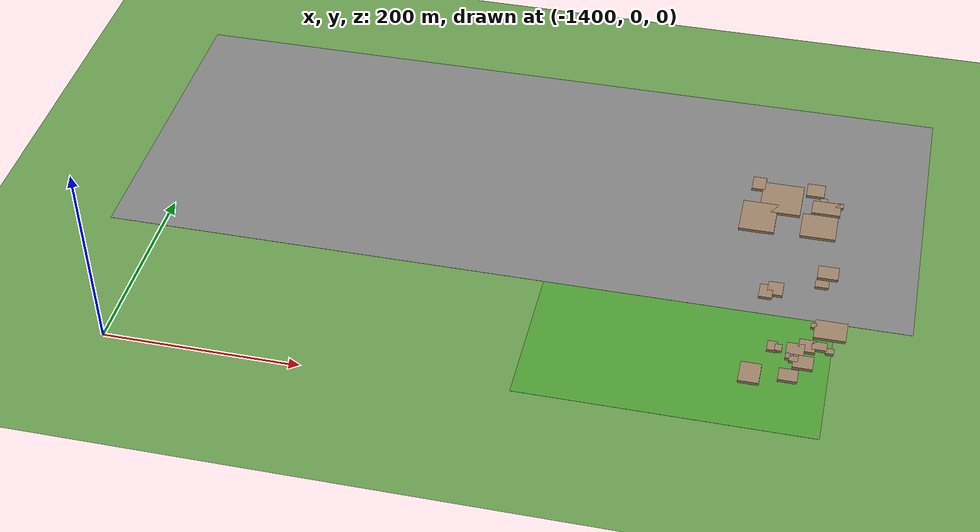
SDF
<sdf version="1.9">
 <world name="kimje_farmland">
  <model name="ground_plane">
   <static>true</static>
   <link name="link">
    <collision name="collision">
     <geometry><plane><normal>0 0 1</normal><size>2000 2000</size></plane></geometry>
    </collision>
    <visual name="visual">
     <geometry><plane><normal>0 0 1</normal><size>2000 2000</size></plane></geometry>
     <material><ambient>0.4 0.6 0.3 1</ambient><diffuse>0.4 0.6 0.3 1</diffuse></material>
    </visual>
   </link>
  </model>
  <model name="osm_77">
   <static>true</static>
   <pose>-1043.21 331.19 0.040 0 0 0</pose>
   <link name="link">
    <collision name="collision"><geometry><box><size>829.08 332.94 0.080</size></box></geometry></collision>
    <visual name="visual">
     <geometry><box><size>829.08 332.94 0.080</size></box></geometry>
     <material><ambient>0.5 0.5 0.5 1</ambient><diffuse>0.5 0.5 0.5 1</diffuse></material>
    </visual>
   </link>
  </model>
  <model name="osm_267">
   <static>true</static>
   <pose>-743.27 359.89 1.500 0 0 0</pose>
   <link name="link">
    <collision name="collision"><geometry><box><size>18.78 19.33 3.000</size></box></geometry></collision>
    <visual name="visual">
     <geometry><box><size>18.78 19.33 3.000</size></box></geometry>
     <material><ambient>0.6 0.5 0.4 1</ambient><diffuse>0.6 0.5 0.4 1</diffuse></material>
    </visual>
   </link>
  </model>
  <model name="osm_268">
   <static>true</static>
   <pose>-733.55 345.31 1.500 0 0 0</pose>
   <link name="link">
    <collision name="collision"><geometry><box><size>7.40 6.65 3.000</size></box></geometry></collision>
    <visual name="visual">
     <geometry><box><size>7.40 6.65 3.000</size></box></geometry>
     <material><ambient>0.6 0.5 0.4 1</ambient><diffuse>0.6 0.5 0.4 1</diffuse></material>
    </visual>
   </link>
  </model>
  <model name="osm_269">
   <static>true</static>
   <pose>-716.46 340.56 1.500 0 0 0</pose>
   <link name="link">
    <collision name="collision"><geometry><box><size>7.94 6.80 3.000</size></box></geometry></collision>
    <visual name="visual">
     <geometry><box><size>7.94 6.80 3.000</size></box></geometry>
     <material><ambient>0.6 0.5 0.4 1</ambient><diffuse>0.6 0.5 0.4 1</diffuse></material>
    </visual>
   </link>
  </model>
  <model name="osm_270">
   <static>true</static>
   <pose>-729.62 333.58 1.500 0 0 0</pose>
   <link name="link">
    <collision name="collision"><geometry><box><size>29.69 19.46 3.000</size></box></geometry></collision>
    <visual name="visual">
     <geometry><box><size>29.69 19.46 3.000</size></box></geometry>
     <material><ambient>0.6 0.5 0.4 1</ambient><diffuse>0.6 0.5 0.4 1</diffuse></material>
    </visual>
   </link>
  </model>
  <model name="osm_271">
   <static>true</static>
   <pose>-734.37 302.98 1.500 0 0 0</pose>
   <link name="link">
    <collision name="collision"><geometry><box><size>36.65 35.29 3.000</size></box></geometry></collision>
    <visual name="visual">
     <geometry><box><size>36.65 35.29 3.000</size></box></geometry>
     <material><ambient>0.6 0.5 0.4 1</ambient><diffuse>0.6 0.5 0.4 1</diffuse></material>
    </visual>
   </link>
  </model>
  <model name="osm_272">
   <static>true</static>
   <pose>-777.07 339.11 1.500 0 0 0</pose>
   <link name="link">
    <collision name="collision"><geometry><box><size>42.67 46.49 3.000</size></box></geometry></collision>
    <visual name="visual">
     <geometry><box><size>42.67 46.49 3.000</size></box></geometry>
     <material><ambient>0.6 0.5 0.4 1</ambient><diffuse>0.6 0.5 0.4 1</diffuse></material>
    </visual>
   </link>
  </model>
  <model name="osm_273">
   <static>true</static>
   <pose>-797.60 306.10 1.500 0 0 0</pose>
   <link name="link">
    <collision name="collision"><geometry><box><size>36.50 44.73 3.000</size></box></geometry></collision>
    <visual name="visual">
     <geometry><box><size>36.50 44.73 3.000</size></box></geometry>
     <material><ambient>0.6 0.5 0.4 1</ambient><diffuse>0.6 0.5 0.4 1</diffuse></material>
    </visual>
   </link>
  </model>
  <model name="osm_274">
   <static>true</static>
   <pose>-803.30 359.51 1.500 0 0 0</pose>
   <link name="link">
    <collision name="collision"><geometry><box><size>13.94 19.22 3.000</size></box></geometry></collision>
    <visual name="visual">
     <geometry><box><size>13.94 19.22 3.000</size></box></geometry>
     <material><ambient>0.6 0.5 0.4 1</ambient><diffuse>0.6 0.5 0.4 1</diffuse></material>
    </visual>
   </link>
  </model>
  <model name="osm_412">
   <static>true</static>
   <pose>-767.48 200.61 1.500 0 0 0</pose>
   <link name="link">
    <collision name="collision"><geometry><box><size>15.38 18.66 3.000</size></box></geometry></collision>
    <visual name="visual">
     <geometry><box><size>15.38 18.66 3.000</size></box></geometry>
     <material><ambient>0.6 0.5 0.4 1</ambient><diffuse>0.6 0.5 0.4 1</diffuse></material>
    </visual>
   </link>
  </model>
  <model name="osm_413">
   <static>true</static>
   <pose>-776.26 195.11 1.500 0 0 0</pose>
   <link name="link">
    <collision name="collision"><geometry><box><size>13.58 18.57 3.000</size></box></geometry></collision>
    <visual name="visual">
     <geometry><box><size>13.58 18.57 3.000</size></box></geometry>
     <material><ambient>0.6 0.5 0.4 1</ambient><diffuse>0.6 0.5 0.4 1</diffuse></material>
    </visual>
   </link>
  </model>
  <model name="osm_414">
   <static>true</static>
   <pose>-718.07 234.54 1.500 0 0 0</pose>
   <link name="link">
    <collision name="collision"><geometry><box><size>20.97 18.01 3.000</size></box></geometry></collision>
    <visual name="visual">
     <geometry><box><size>20.97 18.01 3.000</size></box></geometry>
     <material><ambient>0.6 0.5 0.4 1</ambient><diffuse>0.6 0.5 0.4 1</diffuse></material>
    </visual>
   </link>
  </model>
  <model name="osm_415">
   <static>true</static>
   <pose>-722.65 216.96 1.500 0 0 0</pose>
   <link name="link">
    <collision name="collision"><geometry><box><size>13.51 10.46 3.000</size></box></geometry></collision>
    <visual name="visual">
     <geometry><box><size>13.51 10.46 3.000</size></box></geometry>
     <material><ambient>0.6 0.5 0.4 1</ambient><diffuse>0.6 0.5 0.4 1</diffuse></material>
    </visual>
   </link>
  </model>
  <model name="osm_418">
   <static>true</static>
   <pose>-707.88 152.14 1.500 0 0 0</pose>
   <link name="link">
    <collision name="collision"><geometry><box><size>31.64 25.01 3.000</size></box></geometry></collision>
    <visual name="visual">
     <geometry><box><size>31.64 25.01 3.000</size></box></geometry>
     <material><ambient>0.6 0.5 0.4 1</ambient><diffuse>0.6 0.5 0.4 1</diffuse></material>
    </visual>
   </link>
  </model>
  <model name="osm_420">
   <static>true</static>
   <pose>-724.60 156.01 1.500 0 0 0</pose>
   <link name="link">
    <collision name="collision"><geometry><box><size>5.79 6.29 3.000</size></box></geometry></collision>
    <visual name="visual">
     <geometry><box><size>5.79 6.29 3.000</size></box></geometry>
     <material><ambient>0.6 0.5 0.4 1</ambient><diffuse>0.6 0.5 0.4 1</diffuse></material>
    </visual>
   </link>
  </model>
  <model name="osm_453">
   <static>true</static>
   <pose>-728.06 126.51 1.500 0 0 0</pose>
   <link name="link">
    <collision name="collision"><geometry><box><size>16.15 16.69 3.000</size></box></geometry></collision>
    <visual name="visual">
     <geometry><box><size>16.15 16.69 3.000</size></box></geometry>
     <material><ambient>0.6 0.5 0.4 1</ambient><diffuse>0.6 0.5 0.4 1</diffuse></material>
    </visual>
   </link>
  </model>
  <model name="osm_454">
   <static>true</static>
   <pose>-716.39 128.60 1.500 0 0 0</pose>
   <link name="link">
    <collision name="collision"><geometry><box><size>14.66 10.84 3.000</size></box></geometry></collision>
    <visual name="visual">
     <geometry><box><size>14.66 10.84 3.000</size></box></geometry>
     <material><ambient>0.6 0.5 0.4 1</ambient><diffuse>0.6 0.5 0.4 1</diffuse></material>
    </visual>
   </link>
  </model>
  <model name="osm_455">
   <static>true</static>
   <pose>-706.07 123.72 1.500 0 0 0</pose>
   <link name="link">
    <collision name="collision"><geometry><box><size>8.12 7.14 3.000</size></box></geometry></collision>
    <visual name="visual">
     <geometry><box><size>8.12 7.14 3.000</size></box></geometry>
     <material><ambient>0.6 0.5 0.4 1</ambient><diffuse>0.6 0.5 0.4 1</diffuse></material>
    </visual>
   </link>
  </model>
  <model name="osm_456">
   <static>true</static>
   <pose>-738.75 119.87 1.500 0 0 0</pose>
   <link name="link">
    <collision name="collision"><geometry><box><size>17.43 15.08 3.000</size></box></geometry></collision>
    <visual name="visual">
     <geometry><box><size>17.43 15.08 3.000</size></box></geometry>
     <material><ambient>0.6 0.5 0.4 1</ambient><diffuse>0.6 0.5 0.4 1</diffuse></material>
    </visual>
   </link>
  </model>
  <model name="osm_457">
   <static>true</static>
   <pose>-729.57 103.71 1.500 0 0 0</pose>
   <link name="link">
    <collision name="collision"><geometry><box><size>19.73 17.19 3.000</size></box></geometry></collision>
    <visual name="visual">
     <geometry><box><size>19.73 17.19 3.000</size></box></geometry>
     <material><ambient>0.6 0.5 0.4 1</ambient><diffuse>0.6 0.5 0.4 1</diffuse></material>
    </visual>
   </link>
  </model>
  <model name="osm_458">
   <static>true</static>
   <pose>-743.65 109.70 1.500 0 0 0</pose>
   <link name="link">
    <collision name="collision"><geometry><box><size>7.17 7.61 3.000</size></box></geometry></collision>
    <visual name="visual">
     <geometry><box><size>7.17 7.61 3.000</size></box></geometry>
     <material><ambient>0.6 0.5 0.4 1</ambient><diffuse>0.6 0.5 0.4 1</diffuse></material>
    </visual>
   </link>
  </model>
  <model name="osm_459">
   <static>true</static>
   <pose>-739.02 106.86 1.500 0 0 0</pose>
   <link name="link">
    <collision name="collision"><geometry><box><size>8.72 8.47 3.000</size></box></geometry></collision>
    <visual name="visual">
     <geometry><box><size>8.72 8.47 3.000</size></box></geometry>
     <material><ambient>0.6 0.5 0.4 1</ambient><diffuse>0.6 0.5 0.4 1</diffuse></material>
    </visual>
   </link>
  </model>
  <model name="osm_460">
   <static>true</static>
   <pose>-761.22 119.68 1.500 0 0 0</pose>
   <link name="link">
    <collision name="collision"><geometry><box><size>9.53 12.50 3.000</size></box></geometry></collision>
    <visual name="visual">
     <geometry><box><size>9.53 12.50 3.000</size></box></geometry>
     <material><ambient>0.6 0.5 0.4 1</ambient><diffuse>0.6 0.5 0.4 1</diffuse></material>
    </visual>
   </link>
  </model>
  <model name="osm_461">
   <static>true</static>
   <pose>-755.01 118.49 1.500 0 0 0</pose>
   <link name="link">
    <collision name="collision"><geometry><box><size>7.10 8.87 3.000</size></box></geometry></collision>
    <visual name="visual">
     <geometry><box><size>7.10 8.87 3.000</size></box></geometry>
     <material><ambient>0.6 0.5 0.4 1</ambient><diffuse>0.6 0.5 0.4 1</diffuse></material>
    </visual>
   </link>
  </model>
  <model name="osm_462">
   <static>true</static>
   <pose>-741.69 83.60 1.500 0 0 0</pose>
   <link name="link">
    <collision name="collision"><geometry><box><size>18.69 15.94 3.000</size></box></geometry></collision>
    <visual name="visual">
     <geometry><box><size>18.69 15.94 3.000</size></box></geometry>
     <material><ambient>0.6 0.5 0.4 1</ambient><diffuse>0.6 0.5 0.4 1</diffuse></material>
    </visual>
   </link>
  </model>
  <model name="osm_463">
   <static>true</static>
   <pose>-777.78 79.36 1.500 0 0 0</pose>
   <link name="link">
    <collision name="collision"><geometry><box><size>20.31 25.89 3.000</size></box></geometry></collision>
    <visual name="visual">
     <geometry><box><size>20.31 25.89 3.000</size></box></geometry>
     <material><ambient>0.6 0.5 0.4 1</ambient><diffuse>0.6 0.5 0.4 1</diffuse></material>
    </visual>
   </link>
  </model>
  <model name="osm_489">
   <static>true</static>
   <pose>-850.33 167.32 0.025 0 0 0</pose>
   <link name="link">
    <collision name="collision"><geometry><box><size>292.17 314.56 0.050</size></box></geometry></collision>
    <visual name="visual">
     <geometry><box><size>292.17 314.56 0.050</size></box></geometry>
     <material><ambient>0.3 0.6 0.2 1</ambient><diffuse>0.3 0.6 0.2 1</diffuse></material>
    </visual>
   </link>
  </model>
 </world>
</sdf>
